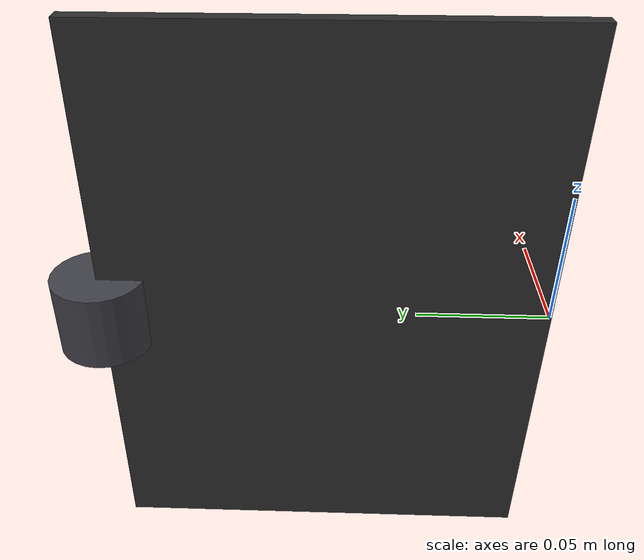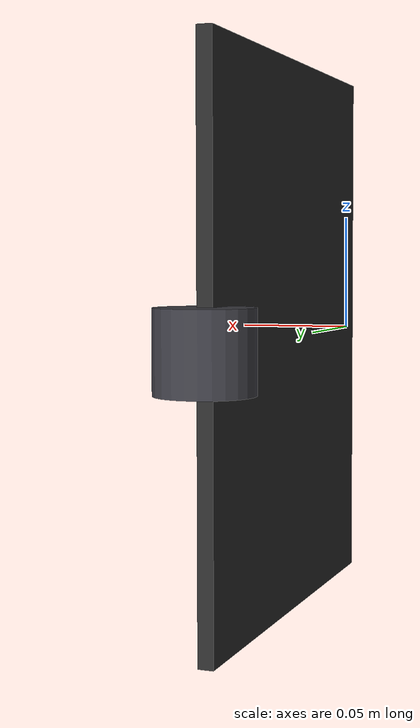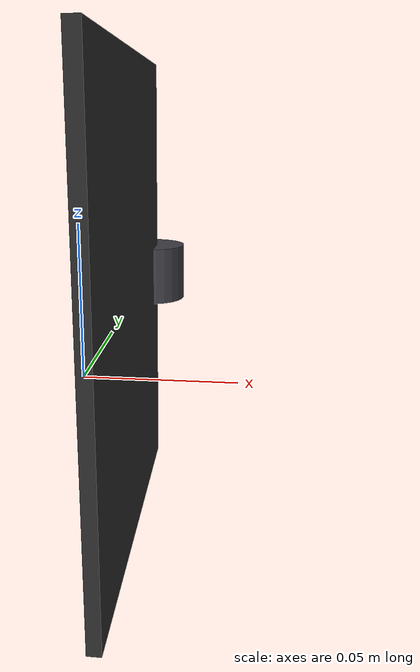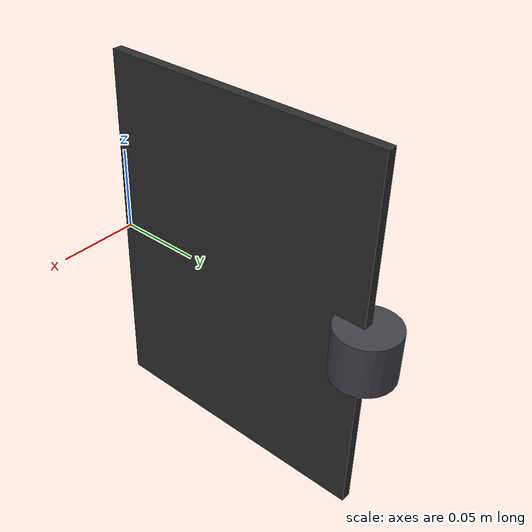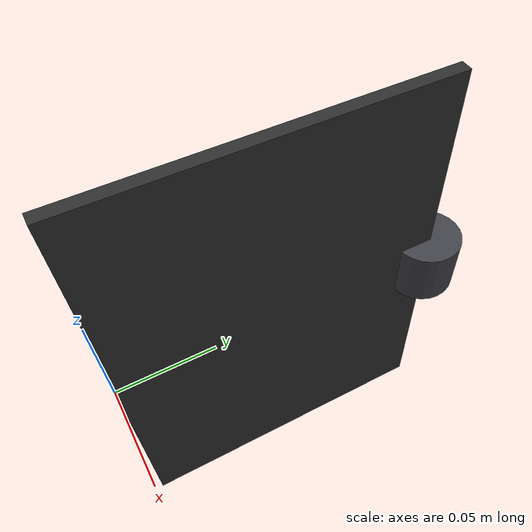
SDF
<?xml version="1.0"?>
<sdf version='1.10'>
  <model name='rocket_fin'>
    <link name='fin_link'>
      <!-- Root at origin (y=0) on fuselage; span +Y; chord along +Z -->
      <visual name='wing_panel_visual'>
        <pose>0 0.085 0 0 0 0</pose>
        <geometry>
          <box>
            <size>0.006 0.17 0.22</size>
          </box>
        </geometry>
        <material>
          <ambient>0.175 0.175 0.175 1.0</ambient>
          <diffuse>0.175 0.175 0.175 1.0</diffuse>
        </material>
      </visual>
      <visual name='motor_mount_visual'>
        <pose>0 0.17 0 0 0 0</pose>
        <geometry>
          <cylinder>
            <length>0.03</length>
            <radius>0.018</radius>
          </cylinder>
        </geometry>
        <material>
          <ambient>0.25 0.25 0.28 1.0</ambient>
          <diffuse>0.25 0.25 0.28 1.0</diffuse>
        </material>
      </visual>
    </link>
  </model>
</sdf>
